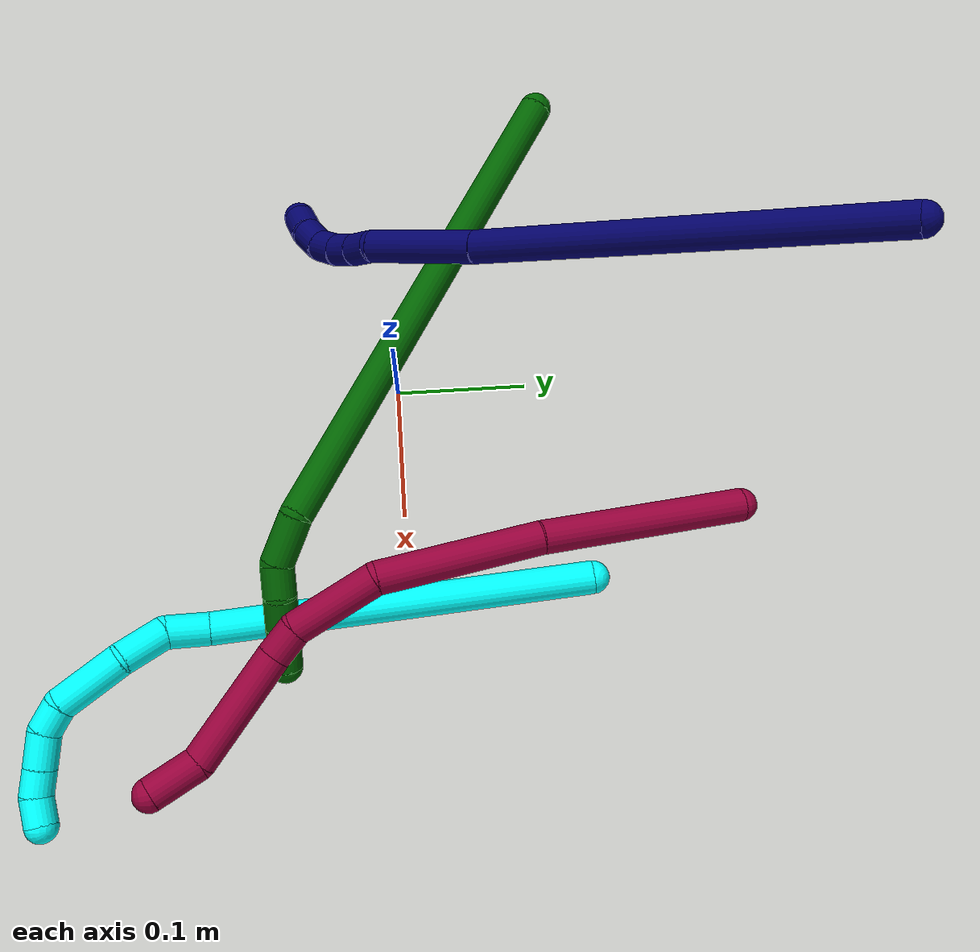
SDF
<sdf version="1.7">
 <world name="default">
  <model name="3">
   <static>0</static>
   <link name="3">
    <collision name="collision-cylinder-e_1_1_4">
     <pose>-0.004172 -0.099113 0.104186 0.760452 -0.029006 -0.011594</pose>
     <geometry><cylinder><radius>0.0125</radius><length>0.287719</length></cylinder></geometry>
     <surface>
      <friction><ode><mu>1.16</mu><mu2>1.16</mu2><slip1>0</slip1><slip2>0</slip2></ode></friction>
      <contact><ode><kp>1e+06</kp><kd>1</kd><max_vel>0</max_vel><min_depth>0.001</min_depth></ode></contact>
     </surface>
    </collision>
    <visual name="visual-cylinder-e_1_1_4">
     <pose>-0.004172 -0.099113 0.104186 0.760452 -0.029006 -0.011594</pose>
     <geometry><cylinder><radius>0.0125</radius><length>0.287719</length></cylinder></geometry>
     <material><ambient>0.003922 1 0.996078 1</ambient></material>
    </visual>
    <collision name="collision-cylinder-e_2_4_5">
     <pose>-0.0068 -0.212522 0.216945 1.03062 0.092385 0.052348</pose>
     <geometry><cylinder><radius>0.0125</radius><length>0.033481</length></cylinder></geometry>
     <surface>
      <friction><ode><mu>1.16</mu><mu2>1.16</mu2><slip1>0</slip1><slip2>0</slip2></ode></friction>
      <contact><ode><kp>1e+06</kp><kd>1</kd><max_vel>0</max_vel><min_depth>0.001</min_depth></ode></contact>
     </surface>
    </collision>
    <visual name="visual-cylinder-e_2_4_5">
     <pose>-0.0068 -0.212522 0.216945 1.03062 0.092385 0.052348</pose>
     <geometry><cylinder><radius>0.0125</radius><length>0.033481</length></cylinder></geometry>
     <material><ambient>0.003922 1 0.996078 1</ambient></material>
    </visual>
    <collision name="collision-cylinder-e_3_5_6">
     <pose>-0.011498 -0.24316 0.231 1.24711 -0.347484 -0.251159</pose>
     <geometry><cylinder><radius>0.0125</radius><length>0.036665</length></cylinder></geometry>
     <surface>
      <friction><ode><mu>1.16</mu><mu2>1.16</mu2><slip1>0</slip1><slip2>0</slip2></ode></friction>
      <contact><ode><kp>1e+06</kp><kd>1</kd><max_vel>0</max_vel><min_depth>0.001</min_depth></ode></contact>
     </surface>
    </collision>
    <visual name="visual-cylinder-e_3_5_6">
     <pose>-0.011498 -0.24316 0.231 1.24711 -0.347484 -0.251159</pose>
     <geometry><cylinder><radius>0.0125</radius><length>0.036665</length></cylinder></geometry>
     <material><ambient>0.003922 1 0.996078 1</ambient></material>
    </visual>
    <collision name="collision-cylinder-e_4_6_7">
     <pose>-0.030627 -0.278176 0.249543 0.960486 -0.514627 -0.272459</pose>
     <geometry><cylinder><radius>0.0125</radius><length>0.05236</length></cylinder></geometry>
     <surface>
      <friction><ode><mu>1.16</mu><mu2>1.16</mu2><slip1>0</slip1><slip2>0</slip2></ode></friction>
      <contact><ode><kp>1e+06</kp><kd>1</kd><max_vel>0</max_vel><min_depth>0.001</min_depth></ode></contact>
     </surface>
    </collision>
    <visual name="visual-cylinder-e_4_6_7">
     <pose>-0.030627 -0.278176 0.249543 0.960486 -0.514627 -0.272459</pose>
     <geometry><cylinder><radius>0.0125</radius><length>0.05236</length></cylinder></geometry>
     <material><ambient>0.003922 1 0.996078 1</ambient></material>
    </visual>
    <collision name="collision-cylinder-e_5_7_8">
     <pose>-0.052453 -0.301888 0.266778 0.878803 -0.93904 -0.468224</pose>
     <geometry><cylinder><radius>0.0125</radius><length>0.022155</length></cylinder></geometry>
     <surface>
      <friction><ode><mu>1.16</mu><mu2>1.16</mu2><slip1>0</slip1><slip2>0</slip2></ode></friction>
      <contact><ode><kp>1e+06</kp><kd>1</kd><max_vel>0</max_vel><min_depth>0.001</min_depth></ode></contact>
     </surface>
    </collision>
    <visual name="visual-cylinder-e_5_7_8">
     <pose>-0.052453 -0.301888 0.266778 0.878803 -0.93904 -0.468224</pose>
     <geometry><cylinder><radius>0.0125</radius><length>0.022155</length></cylinder></geometry>
     <material><ambient>0.003922 1 0.996078 1</ambient></material>
    </visual>
    <collision name="collision-cylinder-e_6_8_9">
     <pose>-0.074131 -0.310398 0.271531 1.40573 -1.30115 -1.14544</pose>
     <geometry><cylinder><radius>0.0125</radius><length>0.026433</length></cylinder></geometry>
     <surface>
      <friction><ode><mu>1.16</mu><mu2>1.16</mu2><slip1>0</slip1><slip2>0</slip2></ode></friction>
      <contact><ode><kp>1e+06</kp><kd>1</kd><max_vel>0</max_vel><min_depth>0.001</min_depth></ode></contact>
     </surface>
    </collision>
    <visual name="visual-cylinder-e_6_8_9">
     <pose>-0.074131 -0.310398 0.271531 1.40573 -1.30115 -1.14544</pose>
     <geometry><cylinder><radius>0.0125</radius><length>0.026433</length></cylinder></geometry>
     <material><ambient>0.003922 1 0.996078 1</ambient></material>
    </visual>
    <collision name="collision-cylinder-e_7_9_10">
     <pose>-0.096517 -0.316773 0.272332 1.49439 -1.27778 -1.20542</pose>
     <geometry><cylinder><radius>0.0125</radius><length>0.020154</length></cylinder></geometry>
     <surface>
      <friction><ode><mu>1.16</mu><mu2>1.16</mu2><slip1>0</slip1><slip2>0</slip2></ode></friction>
      <contact><ode><kp>1e+06</kp><kd>1</kd><max_vel>0</max_vel><min_depth>0.001</min_depth></ode></contact>
     </surface>
    </collision>
    <visual name="visual-cylinder-e_7_9_10">
     <pose>-0.096517 -0.316773 0.272332 1.49439 -1.27778 -1.20542</pose>
     <geometry><cylinder><radius>0.0125</radius><length>0.020154</length></cylinder></geometry>
     <material><ambient>0.003922 1 0.996078 1</ambient></material>
    </visual>
    <collision name="collision-cylinder-e_8_10_2">
     <pose>-0.116146 -0.321026 0.269531 2.72134 -1.2505 -2.56705</pose>
     <geometry><cylinder><radius>0.0125</radius><length>0.021034</length></cylinder></geometry>
     <surface>
      <friction><ode><mu>1.16</mu><mu2>1.16</mu2><slip1>0</slip1><slip2>0</slip2></ode></friction>
      <contact><ode><kp>1e+06</kp><kd>1</kd><max_vel>0</max_vel><min_depth>0.001</min_depth></ode></contact>
     </surface>
    </collision>
    <visual name="visual-cylinder-e_8_10_2">
     <pose>-0.116146 -0.321026 0.269531 2.72134 -1.2505 -2.56705</pose>
     <geometry><cylinder><radius>0.0125</radius><length>0.021034</length></cylinder></geometry>
     <material><ambient>0.003922 1 0.996078 1</ambient></material>
    </visual>
    <collision name="collision-sphere-2">
     <pose>-0.126128 -0.322377 0.266508 0 -0 0</pose>
     <geometry><sphere><radius>0.0125</radius></sphere></geometry>
     <surface>
      <friction><ode><mu>1.16</mu><mu2>1.16</mu2><slip1>0</slip1><slip2>0</slip2></ode></friction>
      <contact><ode><kp>1e+06</kp><kd>1</kd><max_vel>0</max_vel><min_depth>0.001</min_depth></ode></contact>
     </surface>
    </collision>
    <visual name="visual-sphere-2">
     <pose>-0.126128 -0.322377 0.266508 0 -0 0</pose>
     <geometry><sphere><radius>0.0125</radius></sphere></geometry>
     <material><ambient>0.003922 1 0.996078 1</ambient></material>
    </visual>
    <collision name="collision-sphere-10">
     <pose>-0.106164 -0.319675 0.272554 0 -0 0</pose>
     <geometry><sphere><radius>0.0125</radius></sphere></geometry>
     <surface>
      <friction><ode><mu>1.16</mu><mu2>1.16</mu2><slip1>0</slip1><slip2>0</slip2></ode></friction>
      <contact><ode><kp>1e+06</kp><kd>1</kd><max_vel>0</max_vel><min_depth>0.001</min_depth></ode></contact>
     </surface>
    </collision>
    <visual name="visual-sphere-10">
     <pose>-0.106164 -0.319675 0.272554 0 -0 0</pose>
     <geometry><sphere><radius>0.0125</radius></sphere></geometry>
     <material><ambient>0.003922 1 0.996078 1</ambient></material>
    </visual>
    <collision name="collision-sphere-9">
     <pose>-0.086869 -0.313871 0.272109 0 -0 0</pose>
     <geometry><sphere><radius>0.0125</radius></sphere></geometry>
     <surface>
      <friction><ode><mu>1.16</mu><mu2>1.16</mu2><slip1>0</slip1><slip2>0</slip2></ode></friction>
      <contact><ode><kp>1e+06</kp><kd>1</kd><max_vel>0</max_vel><min_depth>0.001</min_depth></ode></contact>
     </surface>
    </collision>
    <visual name="visual-sphere-9">
     <pose>-0.086869 -0.313871 0.272109 0 -0 0</pose>
     <geometry><sphere><radius>0.0125</radius></sphere></geometry>
     <material><ambient>0.003922 1 0.996078 1</ambient></material>
    </visual>
    <collision name="collision-sphere-4">
     <pose>-0.008344 -0.198226 0.208372 0 -0 0</pose>
     <geometry><sphere><radius>0.0125</radius></sphere></geometry>
     <surface>
      <friction><ode><mu>1.16</mu><mu2>1.16</mu2><slip1>0</slip1><slip2>0</slip2></ode></friction>
      <contact><ode><kp>1e+06</kp><kd>1</kd><max_vel>0</max_vel><min_depth>0.001</min_depth></ode></contact>
     </surface>
    </collision>
    <visual name="visual-sphere-4">
     <pose>-0.008344 -0.198226 0.208372 0 -0 0</pose>
     <geometry><sphere><radius>0.0125</radius></sphere></geometry>
     <material><ambient>0.003922 1 0.996078 1</ambient></material>
    </visual>
    <collision name="collision-sphere-1">
     <geometry><sphere><radius>0.0125</radius></sphere></geometry>
     <surface>
      <friction><ode><mu>1.16</mu><mu2>1.16</mu2><slip1>0</slip1><slip2>0</slip2></ode></friction>
      <contact><ode><kp>1e+06</kp><kd>1</kd><max_vel>0</max_vel><min_depth>0.001</min_depth></ode></contact>
     </surface>
    </collision>
    <visual name="visual-sphere-1">
     <geometry><sphere><radius>0.0125</radius></sphere></geometry>
     <material><ambient>0.003922 1 0.996078 1</ambient></material>
    </visual>
    <collision name="collision-sphere-8">
     <pose>-0.061392 -0.306925 0.270952 0 -0 0</pose>
     <geometry><sphere><radius>0.0125</radius></sphere></geometry>
     <surface>
      <friction><ode><mu>1.16</mu><mu2>1.16</mu2><slip1>0</slip1><slip2>0</slip2></ode></friction>
      <contact><ode><kp>1e+06</kp><kd>1</kd><max_vel>0</max_vel><min_depth>0.001</min_depth></ode></contact>
     </surface>
    </collision>
    <visual name="visual-sphere-8">
     <pose>-0.061392 -0.306925 0.270952 0 -0 0</pose>
     <geometry><sphere><radius>0.0125</radius></sphere></geometry>
     <material><ambient>0.003922 1 0.996078 1</ambient></material>
    </visual>
    <collision name="collision-sphere-5">
     <pose>-0.005256 -0.226818 0.225517 0 -0 0</pose>
     <geometry><sphere><radius>0.0125</radius></sphere></geometry>
     <surface>
      <friction><ode><mu>1.16</mu><mu2>1.16</mu2><slip1>0</slip1><slip2>0</slip2></ode></friction>
      <contact><ode><kp>1e+06</kp><kd>1</kd><max_vel>0</max_vel><min_depth>0.001</min_depth></ode></contact>
     </surface>
    </collision>
    <visual name="visual-sphere-5">
     <pose>-0.005256 -0.226818 0.225517 0 -0 0</pose>
     <geometry><sphere><radius>0.0125</radius></sphere></geometry>
     <material><ambient>0.003922 1 0.996078 1</ambient></material>
    </visual>
    <collision name="collision-sphere-6">
     <pose>-0.017741 -0.259501 0.236482 0 -0 0</pose>
     <geometry><sphere><radius>0.0125</radius></sphere></geometry>
     <surface>
      <friction><ode><mu>1.16</mu><mu2>1.16</mu2><slip1>0</slip1><slip2>0</slip2></ode></friction>
      <contact><ode><kp>1e+06</kp><kd>1</kd><max_vel>0</max_vel><min_depth>0.001</min_depth></ode></contact>
     </surface>
    </collision>
    <visual name="visual-sphere-6">
     <pose>-0.017741 -0.259501 0.236482 0 -0 0</pose>
     <geometry><sphere><radius>0.0125</radius></sphere></geometry>
     <material><ambient>0.003922 1 0.996078 1</ambient></material>
    </visual>
    <collision name="collision-sphere-7">
     <pose>-0.043513 -0.296851 0.262604 0 -0 0</pose>
     <geometry><sphere><radius>0.0125</radius></sphere></geometry>
     <surface>
      <friction><ode><mu>1.16</mu><mu2>1.16</mu2><slip1>0</slip1><slip2>0</slip2></ode></friction>
      <contact><ode><kp>1e+06</kp><kd>1</kd><max_vel>0</max_vel><min_depth>0.001</min_depth></ode></contact>
     </surface>
    </collision>
    <visual name="visual-sphere-7">
     <pose>-0.043513 -0.296851 0.262604 0 -0 0</pose>
     <geometry><sphere><radius>0.0125</radius></sphere></geometry>
     <material><ambient>0.003922 1 0.996078 1</ambient></material>
    </visual>
    <inertial>
     <pose>-0.021926 -0.174285 0.166042 0 -0 0</pose>
     <mass>0.5</mass>
     <inertia>
      <ixx>0.001978</ixx>
      <ixy>0</ixy>
      <ixz>0</ixz>
      <iyy>0.001413</iyy>
      <iyz>0</iyz>
      <izz>0.00149</izz>
     </inertia>
    </inertial>
   </link>
   <pose>0.157979 0.138768 0.012806 -2.32209 -0.412264 -3.09787</pose>
  </model>
  <model name="6">
   <static>0</static>
   <link name="6">
    <collision name="collision-cylinder-e_1_1_4">
     <pose>0.187991 0.019831 -0.020509 -2.37298 1.42019 -2.26219</pose>
     <geometry><cylinder><radius>0.0125</radius><length>0.380286</length></cylinder></geometry>
     <surface>
      <friction><ode><mu>1.16</mu><mu2>1.16</mu2><slip1>0</slip1><slip2>0</slip2></ode></friction>
      <contact><ode><kp>1e+06</kp><kd>1</kd><max_vel>0</max_vel><min_depth>0.001</min_depth></ode></contact>
     </surface>
    </collision>
    <visual name="visual-cylinder-e_1_1_4">
     <pose>0.187991 0.019831 -0.020509 -2.37298 1.42019 -2.26219</pose>
     <geometry><cylinder><radius>0.0125</radius><length>0.380286</length></cylinder></geometry>
     <material><ambient>0 0.392157 0.003922 1</ambient></material>
    </visual>
    <collision name="collision-cylinder-e_2_4_5">
     <pose>0.392244 0.040982 -0.050474 -3.00292 1.03986 -2.90015</pose>
     <geometry><cylinder><radius>0.0125</radius><length>0.037717</length></cylinder></geometry>
     <surface>
      <friction><ode><mu>1.16</mu><mu2>1.16</mu2><slip1>0</slip1><slip2>0</slip2></ode></friction>
      <contact><ode><kp>1e+06</kp><kd>1</kd><max_vel>0</max_vel><min_depth>0.001</min_depth></ode></contact>
     </surface>
    </collision>
    <visual name="visual-cylinder-e_2_4_5">
     <pose>0.392244 0.040982 -0.050474 -3.00292 1.03986 -2.90015</pose>
     <geometry><cylinder><radius>0.0125</radius><length>0.037717</length></cylinder></geometry>
     <material><ambient>0 0.392157 0.003922 1</ambient></material>
    </visual>
    <collision name="collision-cylinder-e_3_5_6">
     <pose>0.416267 0.047692 -0.067443 -2.51918 0.698344 -1.6944</pose>
     <geometry><cylinder><radius>0.0125</radius><length>0.024141</length></cylinder></geometry>
     <surface>
      <friction><ode><mu>1.16</mu><mu2>1.16</mu2><slip1>0</slip1><slip2>0</slip2></ode></friction>
      <contact><ode><kp>1e+06</kp><kd>1</kd><max_vel>0</max_vel><min_depth>0.001</min_depth></ode></contact>
     </surface>
    </collision>
    <visual name="visual-cylinder-e_3_5_6">
     <pose>0.416267 0.047692 -0.067443 -2.51918 0.698344 -1.6944</pose>
     <geometry><cylinder><radius>0.0125</radius><length>0.024141</length></cylinder></geometry>
     <material><ambient>0 0.392157 0.003922 1</ambient></material>
    </visual>
    <collision name="collision-cylinder-e_4_6_7">
     <pose>0.430746 0.056742 -0.084796 -2.78557 0.569166 -2.03878</pose>
     <geometry><cylinder><radius>0.0125</radius><length>0.024932</length></cylinder></geometry>
     <surface>
      <friction><ode><mu>1.16</mu><mu2>1.16</mu2><slip1>0</slip1><slip2>0</slip2></ode></friction>
      <contact><ode><kp>1e+06</kp><kd>1</kd><max_vel>0</max_vel><min_depth>0.001</min_depth></ode></contact>
     </surface>
    </collision>
    <visual name="visual-cylinder-e_4_6_7">
     <pose>0.430746 0.056742 -0.084796 -2.78557 0.569166 -2.03878</pose>
     <geometry><cylinder><radius>0.0125</radius><length>0.024932</length></cylinder></geometry>
     <material><ambient>0 0.392157 0.003922 1</ambient></material>
    </visual>
    <collision name="collision-cylinder-e_5_7_2">
     <pose>0.446442 0.06547 -0.107472 -2.76544 0.576791 -2.00076</pose>
     <geometry><cylinder><radius>0.0125</radius><length>0.032924</length></cylinder></geometry>
     <surface>
      <friction><ode><mu>1.16</mu><mu2>1.16</mu2><slip1>0</slip1><slip2>0</slip2></ode></friction>
      <contact><ode><kp>1e+06</kp><kd>1</kd><max_vel>0</max_vel><min_depth>0.001</min_depth></ode></contact>
     </surface>
    </collision>
    <visual name="visual-cylinder-e_5_7_2">
     <pose>0.446442 0.06547 -0.107472 -2.76544 0.576791 -2.00076</pose>
     <geometry><cylinder><radius>0.0125</radius><length>0.032924</length></cylinder></geometry>
     <material><ambient>0 0.392157 0.003922 1</ambient></material>
    </visual>
    <collision name="collision-sphere-2">
     <pose>0.455419 0.070539 -0.120306 0 -0 0</pose>
     <geometry><sphere><radius>0.0125</radius></sphere></geometry>
     <surface>
      <friction><ode><mu>1.16</mu><mu2>1.16</mu2><slip1>0</slip1><slip2>0</slip2></ode></friction>
      <contact><ode><kp>1e+06</kp><kd>1</kd><max_vel>0</max_vel><min_depth>0.001</min_depth></ode></contact>
     </surface>
    </collision>
    <visual name="visual-sphere-2">
     <pose>0.455419 0.070539 -0.120306 0 -0 0</pose>
     <geometry><sphere><radius>0.0125</radius></sphere></geometry>
     <material><ambient>0 0.392157 0.003922 1</ambient></material>
    </visual>
    <collision name="collision-sphere-7">
     <pose>0.437464 0.060402 -0.094639 0 -0 0</pose>
     <geometry><sphere><radius>0.0125</radius></sphere></geometry>
     <surface>
      <friction><ode><mu>1.16</mu><mu2>1.16</mu2><slip1>0</slip1><slip2>0</slip2></ode></friction>
      <contact><ode><kp>1e+06</kp><kd>1</kd><max_vel>0</max_vel><min_depth>0.001</min_depth></ode></contact>
     </surface>
    </collision>
    <visual name="visual-sphere-7">
     <pose>0.437464 0.060402 -0.094639 0 -0 0</pose>
     <geometry><sphere><radius>0.0125</radius></sphere></geometry>
     <material><ambient>0 0.392157 0.003922 1</ambient></material>
    </visual>
    <collision name="collision-sphere-6">
     <pose>0.424028 0.053082 -0.074954 0 -0 0</pose>
     <geometry><sphere><radius>0.0125</radius></sphere></geometry>
     <surface>
      <friction><ode><mu>1.16</mu><mu2>1.16</mu2><slip1>0</slip1><slip2>0</slip2></ode></friction>
      <contact><ode><kp>1e+06</kp><kd>1</kd><max_vel>0</max_vel><min_depth>0.001</min_depth></ode></contact>
     </surface>
    </collision>
    <visual name="visual-sphere-6">
     <pose>0.424028 0.053082 -0.074954 0 -0 0</pose>
     <geometry><sphere><radius>0.0125</radius></sphere></geometry>
     <material><ambient>0 0.392157 0.003922 1</ambient></material>
    </visual>
    <collision name="collision-sphere-5">
     <pose>0.408506 0.042302 -0.059932 0 -0 0</pose>
     <geometry><sphere><radius>0.0125</radius></sphere></geometry>
     <surface>
      <friction><ode><mu>1.16</mu><mu2>1.16</mu2><slip1>0</slip1><slip2>0</slip2></ode></friction>
      <contact><ode><kp>1e+06</kp><kd>1</kd><max_vel>0</max_vel><min_depth>0.001</min_depth></ode></contact>
     </surface>
    </collision>
    <visual name="visual-sphere-5">
     <pose>0.408506 0.042302 -0.059932 0 -0 0</pose>
     <geometry><sphere><radius>0.0125</radius></sphere></geometry>
     <material><ambient>0 0.392157 0.003922 1</ambient></material>
    </visual>
    <collision name="collision-sphere-1">
     <geometry><sphere><radius>0.0125</radius></sphere></geometry>
     <surface>
      <friction><ode><mu>1.16</mu><mu2>1.16</mu2><slip1>0</slip1><slip2>0</slip2></ode></friction>
      <contact><ode><kp>1e+06</kp><kd>1</kd><max_vel>0</max_vel><min_depth>0.001</min_depth></ode></contact>
     </surface>
    </collision>
    <visual name="visual-sphere-1">
     <geometry><sphere><radius>0.0125</radius></sphere></geometry>
     <material><ambient>0 0.392157 0.003922 1</ambient></material>
    </visual>
    <collision name="collision-sphere-4">
     <pose>0.375982 0.039662 -0.041017 0 -0 0</pose>
     <geometry><sphere><radius>0.0125</radius></sphere></geometry>
     <surface>
      <friction><ode><mu>1.16</mu><mu2>1.16</mu2><slip1>0</slip1><slip2>0</slip2></ode></friction>
      <contact><ode><kp>1e+06</kp><kd>1</kd><max_vel>0</max_vel><min_depth>0.001</min_depth></ode></contact>
     </surface>
    </collision>
    <visual name="visual-sphere-4">
     <pose>0.375982 0.039662 -0.041017 0 -0 0</pose>
     <geometry><sphere><radius>0.0125</radius></sphere></geometry>
     <material><ambient>0 0.392157 0.003922 1</ambient></material>
    </visual>
    <inertial>
     <pose>0.243543 0.027618 -0.033967 0 -0 0</pose>
     <mass>0.5</mass>
     <inertia>
      <ixx>-0.000948</ixx>
      <ixy>0</ixy>
      <ixz>0</ixz>
      <iyy>0.004019</iyy>
      <iyz>0</iyz>
      <izz>-0.005048</izz>
     </inertia>
    </inertial>
   </link>
   <pose>-0.212497 0.121574 0.058777 0.232834 -0.125096 -0.672328</pose>
  </model>
  <model name="7">
   <static>0</static>
   <link name="7">
    <collision name="collision-cylinder-e_1_1_4">
     <pose>0.020952 -0.042054 -0.148325 2.86532 0.135073 0.905639</pose>
     <geometry><cylinder><radius>0.0125</radius><length>0.311178</length></cylinder></geometry>
     <surface>
      <friction><ode><mu>1.16</mu><mu2>1.16</mu2><slip1>0</slip1><slip2>0</slip2></ode></friction>
      <contact><ode><kp>1e+06</kp><kd>1</kd><max_vel>0</max_vel><min_depth>0.001</min_depth></ode></contact>
     </surface>
    </collision>
    <visual name="visual-cylinder-e_1_1_4">
     <pose>0.020952 -0.042054 -0.148325 2.86532 0.135073 0.905639</pose>
     <geometry><cylinder><radius>0.0125</radius><length>0.311178</length></cylinder></geometry>
     <material><ambient>0.003922 0 0.403922 1</ambient></material>
    </visual>
    <collision name="collision-cylinder-e_2_4_5">
     <pose>0.045367 -0.097716 -0.337954 2.82333 0.079462 0.485608</pose>
     <geometry><cylinder><radius>0.0125</radius><length>0.08725</length></cylinder></geometry>
     <surface>
      <friction><ode><mu>1.16</mu><mu2>1.16</mu2><slip1>0</slip1><slip2>0</slip2></ode></friction>
      <contact><ode><kp>1e+06</kp><kd>1</kd><max_vel>0</max_vel><min_depth>0.001</min_depth></ode></contact>
     </surface>
    </collision>
    <visual name="visual-cylinder-e_2_4_5">
     <pose>0.045367 -0.097716 -0.337954 2.82333 0.079462 0.485608</pose>
     <geometry><cylinder><radius>0.0125</radius><length>0.08725</length></cylinder></geometry>
     <material><ambient>0.003922 0 0.403922 1</ambient></material>
    </visual>
    <collision name="collision-cylinder-e_3_5_6">
     <pose>0.047 -0.111877 -0.389842 3.08939 -0.171008 -2.55023</pose>
     <geometry><cylinder><radius>0.0125</radius><length>0.02151</length></cylinder></geometry>
     <surface>
      <friction><ode><mu>1.16</mu><mu2>1.16</mu2><slip1>0</slip1><slip2>0</slip2></ode></friction>
      <contact><ode><kp>1e+06</kp><kd>1</kd><max_vel>0</max_vel><min_depth>0.001</min_depth></ode></contact>
     </surface>
    </collision>
    <visual name="visual-cylinder-e_3_5_6">
     <pose>0.047 -0.111877 -0.389842 3.08939 -0.171008 -2.55023</pose>
     <geometry><cylinder><radius>0.0125</radius><length>0.02151</length></cylinder></geometry>
     <material><ambient>0.003922 0 0.403922 1</ambient></material>
    </visual>
    <collision name="collision-cylinder-e_4_6_7">
     <pose>0.043612 -0.114219 -0.410155 2.95974 -0.156107 -1.41801</pose>
     <geometry><cylinder><radius>0.0125</radius><length>0.02003</length></cylinder></geometry>
     <surface>
      <friction><ode><mu>1.16</mu><mu2>1.16</mu2><slip1>0</slip1><slip2>0</slip2></ode></friction>
      <contact><ode><kp>1e+06</kp><kd>1</kd><max_vel>0</max_vel><min_depth>0.001</min_depth></ode></contact>
     </surface>
    </collision>
    <visual name="visual-cylinder-e_4_6_7">
     <pose>0.043612 -0.114219 -0.410155 2.95974 -0.156107 -1.41801</pose>
     <geometry><cylinder><radius>0.0125</radius><length>0.02003</length></cylinder></geometry>
     <material><ambient>0.003922 0 0.403922 1</ambient></material>
    </visual>
    <collision name="collision-cylinder-e_5_7_8">
     <pose>0.039666 -0.119481 -0.428958 2.77601 -0.241115 -1.16026</pose>
     <geometry><cylinder><radius>0.0125</radius><length>0.020008</length></cylinder></geometry>
     <surface>
      <friction><ode><mu>1.16</mu><mu2>1.16</mu2><slip1>0</slip1><slip2>0</slip2></ode></friction>
      <contact><ode><kp>1e+06</kp><kd>1</kd><max_vel>0</max_vel><min_depth>0.001</min_depth></ode></contact>
     </surface>
    </collision>
    <visual name="visual-cylinder-e_5_7_8">
     <pose>0.039666 -0.119481 -0.428958 2.77601 -0.241115 -1.16026</pose>
     <geometry><cylinder><radius>0.0125</radius><length>0.020008</length></cylinder></geometry>
     <material><ambient>0.003922 0 0.403922 1</ambient></material>
    </visual>
    <collision name="collision-cylinder-e_6_8_9">
     <pose>0.03336 -0.129095 -0.444895 2.41177 -0.402112 -0.980177</pose>
     <geometry><cylinder><radius>0.0125</radius><length>0.020019</length></cylinder></geometry>
     <surface>
      <friction><ode><mu>1.16</mu><mu2>1.16</mu2><slip1>0</slip1><slip2>0</slip2></ode></friction>
      <contact><ode><kp>1e+06</kp><kd>1</kd><max_vel>0</max_vel><min_depth>0.001</min_depth></ode></contact>
     </surface>
    </collision>
    <visual name="visual-cylinder-e_6_8_9">
     <pose>0.03336 -0.129095 -0.444895 2.41177 -0.402112 -0.980177</pose>
     <geometry><cylinder><radius>0.0125</radius><length>0.020019</length></cylinder></geometry>
     <material><ambient>0.003922 0 0.403922 1</ambient></material>
    </visual>
    <collision name="collision-cylinder-e_7_9_2">
     <pose>0.023136 -0.140283 -0.45766 2.43405 -0.682227 -1.53127</pose>
     <geometry><cylinder><radius>0.0125</radius><length>0.020005</length></cylinder></geometry>
     <surface>
      <friction><ode><mu>1.16</mu><mu2>1.16</mu2><slip1>0</slip1><slip2>0</slip2></ode></friction>
      <contact><ode><kp>1e+06</kp><kd>1</kd><max_vel>0</max_vel><min_depth>0.001</min_depth></ode></contact>
     </surface>
    </collision>
    <visual name="visual-cylinder-e_7_9_2">
     <pose>0.023136 -0.140283 -0.45766 2.43405 -0.682227 -1.53127</pose>
     <geometry><cylinder><radius>0.0125</radius><length>0.020005</length></cylinder></geometry>
     <material><ambient>0.003922 0 0.403922 1</ambient></material>
    </visual>
    <collision name="collision-sphere-2">
     <pose>0.016829 -0.145329 -0.46356 0 -0 0</pose>
     <geometry><sphere><radius>0.0125</radius></sphere></geometry>
     <surface>
      <friction><ode><mu>1.16</mu><mu2>1.16</mu2><slip1>0</slip1><slip2>0</slip2></ode></friction>
      <contact><ode><kp>1e+06</kp><kd>1</kd><max_vel>0</max_vel><min_depth>0.001</min_depth></ode></contact>
     </surface>
    </collision>
    <visual name="visual-sphere-2">
     <pose>0.016829 -0.145329 -0.46356 0 -0 0</pose>
     <geometry><sphere><radius>0.0125</radius></sphere></geometry>
     <material><ambient>0.003922 0 0.403922 1</ambient></material>
    </visual>
    <collision name="collision-sphere-9">
     <pose>0.029443 -0.135237 -0.45176 0 -0 0</pose>
     <geometry><sphere><radius>0.0125</radius></sphere></geometry>
     <surface>
      <friction><ode><mu>1.16</mu><mu2>1.16</mu2><slip1>0</slip1><slip2>0</slip2></ode></friction>
      <contact><ode><kp>1e+06</kp><kd>1</kd><max_vel>0</max_vel><min_depth>0.001</min_depth></ode></contact>
     </surface>
    </collision>
    <visual name="visual-sphere-9">
     <pose>0.029443 -0.135237 -0.45176 0 -0 0</pose>
     <geometry><sphere><radius>0.0125</radius></sphere></geometry>
     <material><ambient>0.003922 0 0.403922 1</ambient></material>
    </visual>
    <collision name="collision-sphere-4">
     <pose>0.041904 -0.084107 -0.296651 0 -0 0</pose>
     <geometry><sphere><radius>0.0125</radius></sphere></geometry>
     <surface>
      <friction><ode><mu>1.16</mu><mu2>1.16</mu2><slip1>0</slip1><slip2>0</slip2></ode></friction>
      <contact><ode><kp>1e+06</kp><kd>1</kd><max_vel>0</max_vel><min_depth>0.001</min_depth></ode></contact>
     </surface>
    </collision>
    <visual name="visual-sphere-4">
     <pose>0.041904 -0.084107 -0.296651 0 -0 0</pose>
     <geometry><sphere><radius>0.0125</radius></sphere></geometry>
     <material><ambient>0.003922 0 0.403922 1</ambient></material>
    </visual>
    <collision name="collision-sphere-1">
     <geometry><sphere><radius>0.0125</radius></sphere></geometry>
     <surface>
      <friction><ode><mu>1.16</mu><mu2>1.16</mu2><slip1>0</slip1><slip2>0</slip2></ode></friction>
      <contact><ode><kp>1e+06</kp><kd>1</kd><max_vel>0</max_vel><min_depth>0.001</min_depth></ode></contact>
     </surface>
    </collision>
    <visual name="visual-sphere-1">
     <geometry><sphere><radius>0.0125</radius></sphere></geometry>
     <material><ambient>0.003922 0 0.403922 1</ambient></material>
    </visual>
    <collision name="collision-sphere-8">
     <pose>0.037278 -0.122954 -0.43803 0 -0 0</pose>
     <geometry><sphere><radius>0.0125</radius></sphere></geometry>
     <surface>
      <friction><ode><mu>1.16</mu><mu2>1.16</mu2><slip1>0</slip1><slip2>0</slip2></ode></friction>
      <contact><ode><kp>1e+06</kp><kd>1</kd><max_vel>0</max_vel><min_depth>0.001</min_depth></ode></contact>
     </surface>
    </collision>
    <visual name="visual-sphere-8">
     <pose>0.037278 -0.122954 -0.43803 0 -0 0</pose>
     <geometry><sphere><radius>0.0125</radius></sphere></geometry>
     <material><ambient>0.003922 0 0.403922 1</ambient></material>
    </visual>
    <collision name="collision-sphere-5">
     <pose>0.04883 -0.111324 -0.379258 0 -0 0</pose>
     <geometry><sphere><radius>0.0125</radius></sphere></geometry>
     <surface>
      <friction><ode><mu>1.16</mu><mu2>1.16</mu2><slip1>0</slip1><slip2>0</slip2></ode></friction>
      <contact><ode><kp>1e+06</kp><kd>1</kd><max_vel>0</max_vel><min_depth>0.001</min_depth></ode></contact>
     </surface>
    </collision>
    <visual name="visual-sphere-5">
     <pose>0.04883 -0.111324 -0.379258 0 -0 0</pose>
     <geometry><sphere><radius>0.0125</radius></sphere></geometry>
     <material><ambient>0.003922 0 0.403922 1</ambient></material>
    </visual>
    <collision name="collision-sphere-6">
     <pose>0.045169 -0.11243 -0.400425 0 -0 0</pose>
     <geometry><sphere><radius>0.0125</radius></sphere></geometry>
     <surface>
      <friction><ode><mu>1.16</mu><mu2>1.16</mu2><slip1>0</slip1><slip2>0</slip2></ode></friction>
      <contact><ode><kp>1e+06</kp><kd>1</kd><max_vel>0</max_vel><min_depth>0.001</min_depth></ode></contact>
     </surface>
    </collision>
    <visual name="visual-sphere-6">
     <pose>0.045169 -0.11243 -0.400425 0 -0 0</pose>
     <geometry><sphere><radius>0.0125</radius></sphere></geometry>
     <material><ambient>0.003922 0 0.403922 1</ambient></material>
    </visual>
    <collision name="collision-sphere-7">
     <pose>0.042055 -0.116008 -0.419885 0 -0 0</pose>
     <geometry><sphere><radius>0.0125</radius></sphere></geometry>
     <surface>
      <friction><ode><mu>1.16</mu><mu2>1.16</mu2><slip1>0</slip1><slip2>0</slip2></ode></friction>
      <contact><ode><kp>1e+06</kp><kd>1</kd><max_vel>0</max_vel><min_depth>0.001</min_depth></ode></contact>
     </surface>
    </collision>
    <visual name="visual-sphere-7">
     <pose>0.042055 -0.116008 -0.419885 0 -0 0</pose>
     <geometry><sphere><radius>0.0125</radius></sphere></geometry>
     <material><ambient>0.003922 0 0.403922 1</ambient></material>
    </visual>
    <inertial>
     <pose>0.028574 -0.068175 -0.237775 0 -0 0</pose>
     <mass>0.5</mass>
     <inertia>
      <ixx>0.003585</ixx>
      <ixy>0</ixy>
      <ixz>0</ixz>
      <iyy>0.000504</iyy>
      <iyz>0</iyz>
      <izz>0.000324</izz>
     </inertia>
    </inertial>
   </link>
   <pose>-0.017038 0.340255 0.231487 -0.693319 -0.529813 -0.662336</pose>
  </model>
  <model name="8">
   <static>0</static>
   <link name="8">
    <collision name="collision-cylinder-e_1_1_4">
     <pose>0.000245 0.003167 -0.079018 -3.10153 0.0031 -0.154436</pose>
     <geometry><cylinder><radius>0.0125</radius><length>0.158164</length></cylinder></geometry>
     <surface>
      <friction><ode><mu>1.16</mu><mu2>1.16</mu2><slip1>0</slip1><slip2>0</slip2></ode></friction>
      <contact><ode><kp>1e+06</kp><kd>1</kd><max_vel>0</max_vel><min_depth>0.001</min_depth></ode></contact>
     </surface>
    </collision>
    <visual name="visual-cylinder-e_1_1_4">
     <pose>0.000245 0.003167 -0.079018 -3.10153 0.0031 -0.154436</pose>
     <geometry><cylinder><radius>0.0125</radius><length>0.158164</length></cylinder></geometry>
     <material><ambient>0.584314 0 0.227451 1</ambient></material>
    </visual>
    <collision name="collision-cylinder-e_2_4_5">
     <pose>0.003156 0.002135 -0.219152 3.07298 0.043494 1.12977</pose>
     <geometry><cylinder><radius>0.0125</radius><length>0.122637</length></cylinder></geometry>
     <surface>
      <friction><ode><mu>1.16</mu><mu2>1.16</mu2><slip1>0</slip1><slip2>0</slip2></ode></friction>
      <contact><ode><kp>1e+06</kp><kd>1</kd><max_vel>0</max_vel><min_depth>0.001</min_depth></ode></contact>
     </surface>
    </collision>
    <visual name="visual-cylinder-e_2_4_5">
     <pose>0.003156 0.002135 -0.219152 3.07298 0.043494 1.12977</pose>
     <geometry><cylinder><radius>0.0125</radius><length>0.122637</length></cylinder></geometry>
     <material><ambient>0.584314 0 0.227451 1</ambient></material>
    </visual>
    <collision name="collision-cylinder-e_3_5_6">
     <pose>0.008783 -0.016944 -0.310094 2.67885 0.0886 0.371972</pose>
     <geometry><cylinder><radius>0.0125</radius><length>0.066923</length></cylinder></geometry>
     <surface>
      <friction><ode><mu>1.16</mu><mu2>1.16</mu2><slip1>0</slip1><slip2>0</slip2></ode></friction>
      <contact><ode><kp>1e+06</kp><kd>1</kd><max_vel>0</max_vel><min_depth>0.001</min_depth></ode></contact>
     </surface>
    </collision>
    <visual name="visual-cylinder-e_3_5_6">
     <pose>0.008783 -0.016944 -0.310094 2.67885 0.0886 0.371972</pose>
     <geometry><cylinder><radius>0.0125</radius><length>0.066923</length></cylinder></geometry>
     <material><ambient>0.584314 0 0.227451 1</ambient></material>
    </visual>
    <collision name="collision-cylinder-e_4_6_7">
     <pose>0.010785 -0.040478 -0.348931 2.37638 -0.076637 -0.189953</pose>
     <geometry><cylinder><radius>0.0125</radius><length>0.025063</length></cylinder></geometry>
     <surface>
      <friction><ode><mu>1.16</mu><mu2>1.16</mu2><slip1>0</slip1><slip2>0</slip2></ode></friction>
      <contact><ode><kp>1e+06</kp><kd>1</kd><max_vel>0</max_vel><min_depth>0.001</min_depth></ode></contact>
     </surface>
    </collision>
    <visual name="visual-cylinder-e_4_6_7">
     <pose>0.010785 -0.040478 -0.348931 2.37638 -0.076637 -0.189953</pose>
     <geometry><cylinder><radius>0.0125</radius><length>0.025063</length></cylinder></geometry>
     <material><ambient>0.584314 0 0.227451 1</ambient></material>
    </visual>
    <collision name="collision-cylinder-e_5_7_8">
     <pose>-0.002623 -0.077234 -0.389985 2.42164 -0.284189 -0.726462</pose>
     <geometry><cylinder><radius>0.0125</radius><length>0.0888</length></cylinder></geometry>
     <surface>
      <friction><ode><mu>1.16</mu><mu2>1.16</mu2><slip1>0</slip1><slip2>0</slip2></ode></friction>
      <contact><ode><kp>1e+06</kp><kd>1</kd><max_vel>0</max_vel><min_depth>0.001</min_depth></ode></contact>
     </surface>
    </collision>
    <visual name="visual-cylinder-e_5_7_8">
     <pose>-0.002623 -0.077234 -0.389985 2.42164 -0.284189 -0.726462</pose>
     <geometry><cylinder><radius>0.0125</radius><length>0.0888</length></cylinder></geometry>
     <material><ambient>0.584314 0 0.227451 1</ambient></material>
    </visual>
    <collision name="collision-cylinder-e_6_8_2">
     <pose>-0.018759 -0.110972 -0.440014 2.8379 -0.193137 -1.12871</pose>
     <geometry><cylinder><radius>0.0125</radius><length>0.038413</length></cylinder></geometry>
     <surface>
      <friction><ode><mu>1.16</mu><mu2>1.16</mu2><slip1>0</slip1><slip2>0</slip2></ode></friction>
      <contact><ode><kp>1e+06</kp><kd>1</kd><max_vel>0</max_vel><min_depth>0.001</min_depth></ode></contact>
     </surface>
    </collision>
    <visual name="visual-cylinder-e_6_8_2">
     <pose>-0.018759 -0.110972 -0.440014 2.8379 -0.193137 -1.12871</pose>
     <geometry><cylinder><radius>0.0125</radius><length>0.038413</length></cylinder></geometry>
     <material><ambient>0.584314 0 0.227451 1</ambient></material>
    </visual>
    <collision name="collision-sphere-2">
     <pose>-0.022445 -0.116608 -0.458001 0 -0 0</pose>
     <geometry><sphere><radius>0.0125</radius></sphere></geometry>
     <surface>
      <friction><ode><mu>1.16</mu><mu2>1.16</mu2><slip1>0</slip1><slip2>0</slip2></ode></friction>
      <contact><ode><kp>1e+06</kp><kd>1</kd><max_vel>0</max_vel><min_depth>0.001</min_depth></ode></contact>
     </surface>
    </collision>
    <visual name="visual-sphere-2">
     <pose>-0.022445 -0.116608 -0.458001 0 -0 0</pose>
     <geometry><sphere><radius>0.0125</radius></sphere></geometry>
     <material><ambient>0.584314 0 0.227451 1</ambient></material>
    </visual>
    <collision name="collision-sphere-4">
     <pose>0.00049 0.006334 -0.158036 0 -0 0</pose>
     <geometry><sphere><radius>0.0125</radius></sphere></geometry>
     <surface>
      <friction><ode><mu>1.16</mu><mu2>1.16</mu2><slip1>0</slip1><slip2>0</slip2></ode></friction>
      <contact><ode><kp>1e+06</kp><kd>1</kd><max_vel>0</max_vel><min_depth>0.001</min_depth></ode></contact>
     </surface>
    </collision>
    <visual name="visual-sphere-4">
     <pose>0.00049 0.006334 -0.158036 0 -0 0</pose>
     <geometry><sphere><radius>0.0125</radius></sphere></geometry>
     <material><ambient>0.584314 0 0.227451 1</ambient></material>
    </visual>
    <collision name="collision-sphere-1">
     <geometry><sphere><radius>0.0125</radius></sphere></geometry>
     <surface>
      <friction><ode><mu>1.16</mu><mu2>1.16</mu2><slip1>0</slip1><slip2>0</slip2></ode></friction>
      <contact><ode><kp>1e+06</kp><kd>1</kd><max_vel>0</max_vel><min_depth>0.001</min_depth></ode></contact>
     </surface>
    </collision>
    <visual name="visual-sphere-1">
     <geometry><sphere><radius>0.0125</radius></sphere></geometry>
     <material><ambient>0.584314 0 0.227451 1</ambient></material>
    </visual>
    <collision name="collision-sphere-8">
     <pose>-0.015072 -0.105335 -0.422028 0 -0 0</pose>
     <geometry><sphere><radius>0.0125</radius></sphere></geometry>
     <surface>
      <friction><ode><mu>1.16</mu><mu2>1.16</mu2><slip1>0</slip1><slip2>0</slip2></ode></friction>
      <contact><ode><kp>1e+06</kp><kd>1</kd><max_vel>0</max_vel><min_depth>0.001</min_depth></ode></contact>
     </surface>
    </collision>
    <visual name="visual-sphere-8">
     <pose>-0.015072 -0.105335 -0.422028 0 -0 0</pose>
     <geometry><sphere><radius>0.0125</radius></sphere></geometry>
     <material><ambient>0.584314 0 0.227451 1</ambient></material>
    </visual>
    <collision name="collision-sphere-5">
     <pose>0.005823 -0.002065 -0.280269 0 -0 0</pose>
     <geometry><sphere><radius>0.0125</radius></sphere></geometry>
     <surface>
      <friction><ode><mu>1.16</mu><mu2>1.16</mu2><slip1>0</slip1><slip2>0</slip2></ode></friction>
      <contact><ode><kp>1e+06</kp><kd>1</kd><max_vel>0</max_vel><min_depth>0.001</min_depth></ode></contact>
     </surface>
    </collision>
    <visual name="visual-sphere-5">
     <pose>0.005823 -0.002065 -0.280269 0 -0 0</pose>
     <geometry><sphere><radius>0.0125</radius></sphere></geometry>
     <material><ambient>0.584314 0 0.227451 1</ambient></material>
    </visual>
    <collision name="collision-sphere-6">
     <pose>0.011744 -0.031823 -0.339919 0 -0 0</pose>
     <geometry><sphere><radius>0.0125</radius></sphere></geometry>
     <surface>
      <friction><ode><mu>1.16</mu><mu2>1.16</mu2><slip1>0</slip1><slip2>0</slip2></ode></friction>
      <contact><ode><kp>1e+06</kp><kd>1</kd><max_vel>0</max_vel><min_depth>0.001</min_depth></ode></contact>
     </surface>
    </collision>
    <visual name="visual-sphere-6">
     <pose>0.011744 -0.031823 -0.339919 0 -0 0</pose>
     <geometry><sphere><radius>0.0125</radius></sphere></geometry>
     <material><ambient>0.584314 0 0.227451 1</ambient></material>
    </visual>
    <collision name="collision-sphere-7">
     <pose>0.009825 -0.049133 -0.357943 0 -0 0</pose>
     <geometry><sphere><radius>0.0125</radius></sphere></geometry>
     <surface>
      <friction><ode><mu>1.16</mu><mu2>1.16</mu2><slip1>0</slip1><slip2>0</slip2></ode></friction>
      <contact><ode><kp>1e+06</kp><kd>1</kd><max_vel>0</max_vel><min_depth>0.001</min_depth></ode></contact>
     </surface>
    </collision>
    <visual name="visual-sphere-7">
     <pose>0.009825 -0.049133 -0.357943 0 -0 0</pose>
     <geometry><sphere><radius>0.0125</radius></sphere></geometry>
     <material><ambient>0.584314 0 0.227451 1</ambient></material>
    </visual>
    <inertial>
     <pose>0.000661 -0.025014 -0.240809 0 -0 0</pose>
     <mass>0.5</mass>
     <inertia>
      <ixx>0.000529</ixx>
      <ixy>0</ixy>
      <ixz>0</ixz>
      <iyy>-0.000405</iyy>
      <iyz>0</iyz>
      <izz>2.5e-05</izz>
     </inertia>
    </inertial>
   </link>
   <pose>0.113182 0.251743 0.030187 1.83974 0.842349 -2.75785</pose>
  </model>
 </world>
</sdf>
